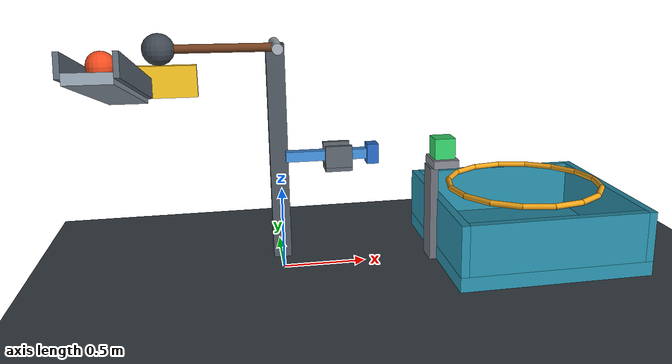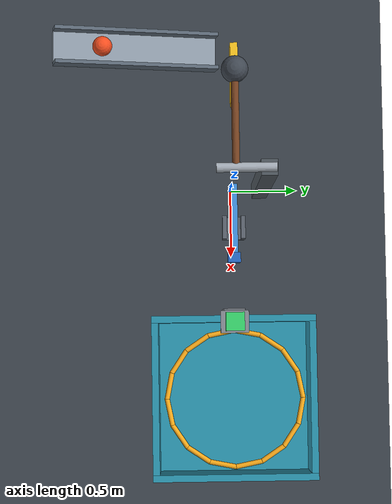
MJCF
<mujoco model="ball_prop_hammer_peg_hoop_cup">
  <compiler angle="degree" inertiafromgeom="true"/>
  <option timestep="0.002" gravity="0 0 -9.81" integrator="implicitfast" iterations="80" cone="elliptic"/>
  <visual>
    <global azimuth="135" elevation="-24"/>
    <headlight ambient="0.35 0.35 0.35" diffuse="0.7 0.7 0.7" specular="0.2 0.2 0.2"/>
  </visual>

  <worldbody>
    <light name="overhead_light" pos="0 -2 5" dir="0 0 -1" diffuse="0.8 0.8 0.8"/>
    <camera name="overview" pos="3.8 -5.5 3.4" xyaxes="0.82 0.57 0 -0.23 0.33 0.92"/>
    <geom name="floor" type="plane" size="5 4 0.1" rgba="0.22 0.25 0.28 1" priority="2" condim="6" friction="0.85 0.025 0.03" solref="0.01 1"/>

    <!-- The ball starts approximately 0.8 m uphill from the prop. -->
    <body name="ramp" pos="-0.81 -0.66 1.229" quat="0.992546 -0.121869 0 0">
      <geom name="ramp_deck" type="box" size="0.10 0.55 0.025" rgba="0.55 0.60 0.65 1" priority="1" condim="3" friction="0.5 0.005 0.0001" solref="0.008 1"/>
      <geom name="ramp_left_rail" type="box" pos="-0.112 0 0.055" size="0.012 0.55 0.055" rgba="0.35 0.40 0.45 1" priority="1" condim="3" friction="0.4 0.005 0.0001"/>
      <geom name="ramp_right_rail" type="box" pos="0.112 0 0.055" size="0.012 0.55 0.055" rgba="0.35 0.40 0.45 1" priority="1" condim="3" friction="0.4 0.005 0.0001"/>
    </body>

    <body name="ball" pos="-0.81 -0.8662 1.3732">
      <freejoint name="ball_free"/>
      <geom name="ball_sphere" type="sphere" size="0.065" mass="0.25" rgba="0.95 0.30 0.12 1" condim="6" friction="0.65 0.015 0.025" solref="0.006 1"/>
    </body>

    <!-- The support withdraws sideways, perpendicular to the hammer's swing. -->
    <body name="prop" pos="-0.65 0 1.17">
      <joint name="prop_slide" type="slide" axis="0 1 0" limited="true" range="0 0.50" damping="0.03" frictionloss="0.03"/>
      <geom name="prop_support" type="box" size="0.20 0.025 0.09" mass="0.08" rgba="0.95 0.75 0.12 1" condim="3" friction="0.02 0.001 0.0001" solref="0.006 1"/>
    </body>

    <!-- Decorative hinge hardware does not collide with the hinged assembly. -->
    <body name="hammer_mount" pos="0 0 0">
      <geom name="hammer_mount_column" type="box" pos="0 0.22 0.675" size="0.055 0.055 0.675" rgba="0.30 0.33 0.36 1" contype="0" conaffinity="0"/>
      <geom name="hammer_mount_axle" type="cylinder" fromto="0 -0.13 1.35 0 0.27 1.35" size="0.032" rgba="0.65 0.68 0.72 1" contype="0" conaffinity="0"/>
    </body>

    <body name="hammer" pos="0 0 1.35">
      <joint name="hammer_hinge" type="hinge" axis="0 1 0" limited="true" range="-140 4" damping="0.018" frictionloss="0.005"/>
      <geom name="hammer_handle" type="capsule" fromto="0 0 0 -0.65 0 0" size="0.025" mass="0.10" rgba="0.45 0.25 0.12 1" friction="0.04 0.002 0.0001" solref="0.006 1"/>
      <geom name="hammer_head" type="sphere" pos="-0.65 0 0" size="0.09" mass="0.55" rgba="0.25 0.28 0.32 1" friction="0.04 0.002 0.0001" solref="0.006 1"/>
    </body>

    <!-- The peg has a visible air gap between its initial tip and the block. -->
    <body name="peg" pos="0.06 0 0.70">
      <joint name="peg_slide" type="slide" axis="1 0 0" limited="true" range="0 0.85" damping="0.10" frictionloss="0.80"/>
      <geom name="peg_shaft" type="box" pos="0.22 0 0" size="0.25 0.028 0.03" mass="0.16" rgba="0.25 0.55 0.85 1" friction="0.15 0.005 0.0001" solref="0.006 1"/>
      <geom name="peg_tip" type="box" pos="0.49 0 0" size="0.035 0.045 0.06" mass="0.06" rgba="0.15 0.40 0.75 1" friction="0.15 0.005 0.0001" solref="0.006 1"/>
    </body>

    <body name="peg_guide" pos="0 0 0">
      <geom name="peg_guide_lower" type="box" pos="0.34 0 0.625" size="0.08 0.075 0.015" rgba="0.35 0.38 0.42 1" contype="0" conaffinity="0"/>
      <geom name="peg_guide_near" type="box" pos="0.34 -0.065 0.70" size="0.08 0.015 0.065" rgba="0.35 0.38 0.42 1" contype="0" conaffinity="0"/>
      <geom name="peg_guide_far" type="box" pos="0.34 0.065 0.70" size="0.08 0.015 0.065" rgba="0.35 0.38 0.42 1" contype="0" conaffinity="0"/>
    </body>

    <body name="block_plinth" pos="0 0 0">
      <geom name="block_plinth_top" type="box" pos="1.00 0 0.620" size="0.08 0.10 0.025" rgba="0.50 0.52 0.55 1" friction="0.18 0.003 0.0001" solref="0.008 1"/>
      <geom name="block_plinth_leg" type="box" pos="0.93 0 0.2975" size="0.025 0.075 0.2975" rgba="0.40 0.42 0.45 1"/>
    </body>

    <body name="block" pos="1.00 0 0.710">
      <freejoint name="block_free"/>
      <geom name="block_payload" type="box" size="0.065 0.065 0.065" mass="0.16" rgba="0.20 0.80 0.40 1" condim="6" friction="0.75 0.025 0.01" solref="0.008 1"/>
    </body>

    <!-- A horizontal circular hoop assembled entirely from primitive capsules. -->
    <body name="hoop" pos="1.55 0 0.44">
      <geom name="hoop_segment_01" type="capsule" fromto="0.4900 0 0 0.4527 0.1875 0" size="0.018" rgba="0.95 0.65 0.10 1"/>
      <geom name="hoop_segment_02" type="capsule" fromto="0.4527 0.1875 0 0.3465 0.3465 0" size="0.018" rgba="0.95 0.65 0.10 1"/>
      <geom name="hoop_segment_03" type="capsule" fromto="0.3465 0.3465 0 0.1875 0.4527 0" size="0.018" rgba="0.95 0.65 0.10 1"/>
      <geom name="hoop_segment_04" type="capsule" fromto="0.1875 0.4527 0 0 0.4900 0" size="0.018" rgba="0.95 0.65 0.10 1"/>
      <geom name="hoop_segment_05" type="capsule" fromto="0 0.4900 0 -0.1875 0.4527 0" size="0.018" rgba="0.95 0.65 0.10 1"/>
      <geom name="hoop_segment_06" type="capsule" fromto="-0.1875 0.4527 0 -0.3465 0.3465 0" size="0.018" rgba="0.95 0.65 0.10 1"/>
      <geom name="hoop_segment_07" type="capsule" fromto="-0.3465 0.3465 0 -0.4527 0.1875 0" size="0.018" rgba="0.95 0.65 0.10 1"/>
      <geom name="hoop_segment_08" type="capsule" fromto="-0.4527 0.1875 0 -0.4900 0 0" size="0.018" rgba="0.95 0.65 0.10 1"/>
      <geom name="hoop_segment_09" type="capsule" fromto="-0.4900 0 0 -0.4527 -0.1875 0" size="0.018" rgba="0.95 0.65 0.10 1"/>
      <geom name="hoop_segment_10" type="capsule" fromto="-0.4527 -0.1875 0 -0.3465 -0.3465 0" size="0.018" rgba="0.95 0.65 0.10 1"/>
      <geom name="hoop_segment_11" type="capsule" fromto="-0.3465 -0.3465 0 -0.1875 -0.4527 0" size="0.018" rgba="0.95 0.65 0.10 1"/>
      <geom name="hoop_segment_12" type="capsule" fromto="-0.1875 -0.4527 0 0 -0.4900 0" size="0.018" rgba="0.95 0.65 0.10 1"/>
      <geom name="hoop_segment_13" type="capsule" fromto="0 -0.4900 0 0.1875 -0.4527 0" size="0.018" rgba="0.95 0.65 0.10 1"/>
      <geom name="hoop_segment_14" type="capsule" fromto="0.1875 -0.4527 0 0.3465 -0.3465 0" size="0.018" rgba="0.95 0.65 0.10 1"/>
      <geom name="hoop_segment_15" type="capsule" fromto="0.3465 -0.3465 0 0.4527 -0.1875 0" size="0.018" rgba="0.95 0.65 0.10 1"/>
      <geom name="hoop_segment_16" type="capsule" fromto="0.4527 -0.1875 0 0.4900 0 0" size="0.018" rgba="0.95 0.65 0.10 1"/>
    </body>

    <body name="cup" pos="1.55 0 0">
      <geom name="cup_bottom" type="box" pos="0 0 0.045" size="0.60 0.60 0.045" rgba="0.15 0.55 0.65 1" priority="1" condim="6" friction="0.9 0.03 0.02" solref="0.01 1"/>
      <geom name="cup_left_wall" type="box" pos="-0.575 0 0.245" size="0.025 0.60 0.155" rgba="0.15 0.55 0.65 1" priority="1" condim="6" friction="0.9 0.03 0.02" solref="0.01 1"/>
      <geom name="cup_right_wall" type="box" pos="0.575 0 0.245" size="0.025 0.60 0.155" rgba="0.15 0.55 0.65 1" priority="1" condim="6" friction="0.9 0.03 0.02" solref="0.01 1"/>
      <geom name="cup_near_wall" type="box" pos="0 -0.575 0.245" size="0.55 0.025 0.155" rgba="0.15 0.55 0.65 1" priority="1" condim="6" friction="0.9 0.03 0.02" solref="0.01 1"/>
      <geom name="cup_far_wall" type="box" pos="0 0.575 0.245" size="0.55 0.025 0.155" rgba="0.15 0.55 0.65 1" priority="1" condim="6" friction="0.9 0.03 0.02" solref="0.01 1"/>
    </body>
  </worldbody>

  <keyframe>
    <key name="start" time="0" qpos="-0.81 -0.8662 1.3732 1 0 0 0 0 0 0 1.00 0 0.710 1 0 0 0"/>
  </keyframe>
</mujoco>
